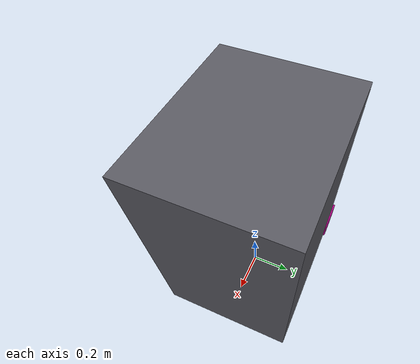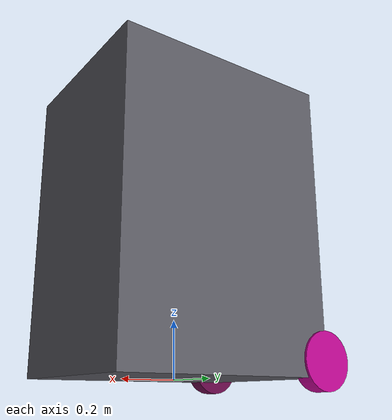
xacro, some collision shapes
<?xml version="1.0"?>

<robot
  xmlns:xacro="http://www.ros.org/wiki/xacro"
  name="iwalk">

  <!-- ΒΑΣΙΚΕΣ ΠΑΡΑΜΕΤΡΟΙ                                  -->

  <xacro:property name="PI" value="3.141592653589793"/>

  <!-- ros2_control configuration. These values become hardware_info parameters
       in the generated URDF; the plugin never parses this Xacro itself. -->
  <xacro:arg name="can_interface" default="vcan0"/>
  <xacro:arg name="single_motor" default="true"/>
  <xacro:arg name="monitor_only" default="false"/>
  <xacro:arg name="feedback_timeout" default="0.2"/>
  <xacro:arg name="motor_pole_pairs" default="15"/>
  <xacro:arg name="motor_gear_ratio" default="1.0"/>
  <xacro:arg name="motor_max_erpm" default="7500"/>
  <xacro:arg name="left_vesc_id" default="1"/>
  <xacro:arg name="right_vesc_id" default="2"/>
  <xacro:arg name="left_direction" default="1"/>
  <xacro:arg name="right_direction" default="1"/>
  <xacro:arg name="left_encoder_sensor" default="hall"/>
  <xacro:arg name="right_encoder_sensor" default="hall"/>
  <xacro:arg name="left_feedback_source" default="vesc_status"/>
  <xacro:arg name="right_feedback_source" default="vesc_status"/>

  <xacro:property name="motor_pole_pairs" value="$(arg motor_pole_pairs)"/>
  <xacro:property name="motor_gear_ratio" value="$(arg motor_gear_ratio)"/>
  <xacro:property name="motor_max_erpm" value="$(arg motor_max_erpm)"/>
  <!-- URDF wheel speed ceiling is derived from the sole hardware speed limit. -->
  <xacro:property name="motor_max_wheel_rad_s"
                  value="${motor_max_erpm * 2.0 * PI / (60.0 * motor_pole_pairs * motor_gear_ratio)}"/>

  <!-- Σταθερό ύψος του base_link από το έδαφος -->
  <xacro:property name="base_link_height" value="0.10"/>
  <!-- 0.001 αν το STL είναι σε mm, 1.0 αν είναι σε m -->

  <xacro:property name="mesh_scale" value="0.001"/>

  <!-- Μετατόπιση και περιστροφή του STL ως προς base_link -->
  <xacro:property name="mesh_x" value="0.682367371"/>
  <xacro:property name="mesh_y" value="-0.326500000"/>
  <xacro:property name="mesh_z" value="-0.095114396"/>

  <xacro:property name="mesh_roll"  value="0.0"/>
  <xacro:property name="mesh_pitch" value="0.0"/>
  <xacro:property name="mesh_yaw"   value="${PI/2.0}"/>

  <xacro:property name="body_length" value="0.784734741"/>
  <xacro:property name="body_width"  value="0.653000000"/>
  <xacro:property name="body_height" value="1.046494491"/>

  <xacro:property name="body_center_x" value="0.39"/>
  <xacro:property name="body_center_y" value="0.0"/>
  <xacro:property name="body_center_z" value="0.428247245"/>
    <!-- Προσωρινές δυναμικές παράμετροι -->
  <xacro:property name="body_mass" value="25.0"/>

  <!-- Πίσω κινητήριοι τροχοί -->
  <xacro:property name="rear_wheel_radius" value="0.10"/>
  <xacro:property name="rear_wheel_width"  value="0.059"/>
  <xacro:property name="rear_wheel_mass"   value="3.5"/>

  <xacro:property name="rear_wheel_separation" value="0.61"/>
  <xacro:property name="rear_wheel_x" value="0.0"/>
  <xacro:property name="rear_wheel_z" value="-0.040"/>

  <!-- Εμπρός caster τροχοί -->
  <xacro:property name="front_wheel_radius" value="0.060"/>
  <xacro:property name="front_wheel_width"  value="0.030"/>
  <xacro:property name="front_wheel_mass"   value="0.30"/>

  <xacro:property name="front_caster_x" value="0.63"/>
  <xacro:property name="front_caster_separation" value="0.38"/>
  <xacro:property name="front_wheel_z" value="-0.035"/>

  <xacro:property name="caster_trail" value="0.03"/>
  <!-- MATERIALS                                            -->

  <material name="iwalk_gray">
    <color rgba="0.35 0.35 0.38 0.95"/>
  </material>

  <!-- Ανοιχτό ροζ -->
  <material name="front_left_pink">
    <color rgba="1.00 0.55 0.72 1.0"/>
  </material>

  <!-- Έντονο hot pink -->
  <material name="front_right_pink">
    <color rgba="1.00 0.05 0.45 1.0"/>
  </material>

  <!-- Magenta -->
  <material name="rear_left_pink">
    <color rgba="0.72 0.02 0.55 1.0"/>
  </material>

  <!-- Σκούρο plum pink -->
  <material name="rear_right_pink">
    <color rgba="0.38 0.03 0.27 1.0"/>
  </material>
  <!-- INERTIAL MACROS                                      -->

  <!-- Inertia ορθογώνιου παραλληλεπιπέδου -->
  <xacro:macro
    name="box_inertial"
    params="mass x y z origin_x origin_y origin_z">

    <inertial>
      <origin
        xyz="${origin_x} ${origin_y} ${origin_z}"
        rpy="0 0 0"/>

      <mass value="${mass}"/>

      <inertia
        ixx="${mass * (y*y + z*z) / 12.0}"
        ixy="0.0"
        ixz="0.0"
        iyy="${mass * (x*x + z*z) / 12.0}"
        iyz="0.0"
        izz="${mass * (x*x + y*y) / 12.0}"/>
    </inertial>

  </xacro:macro>

  <!-- Inertia συμπαγούς κυλινδρικού τροχού με άξονα y -->
  <xacro:macro
    name="wheel_inertial"
    params="mass radius width">

    <inertial>
      <origin xyz="0 0 0" rpy="0 0 0"/>

      <mass value="${mass}"/>

      <inertia
        ixx="${mass * (3.0*radius*radius + width*width) / 12.0}"
        ixy="0.0"
        ixz="0.0"
        iyy="${mass * radius*radius / 2.0}"
        iyz="0.0"
        izz="${mass * (3.0*radius*radius + width*width) / 12.0}"/>
    </inertial>

  </xacro:macro>

  <!-- BASE FOOTPRINT                                       -->
  <!-- Σημείο στο έδαφος κάτω από τον πίσω άξονα            -->

  <link name="base_footprint"/>

  <!-- BASE LINK                                            -->
  <!-- Βρίσκεται στο μέσο του πίσω άξονα, στο ύψος          -->
  <!-- των κέντρων των τροχών                               -->

  <link name="base_link">

    <!-- Πραγματική οπτική γεωμετρία του i-Walk -->
    <visual name="iwalk_body_visual">

      <origin
        xyz="${mesh_x} ${mesh_y} ${mesh_z}"
        rpy="${mesh_roll} ${mesh_pitch} ${mesh_yaw}"/>

      <geometry>
        <mesh
          filename="package://iwalk_description/meshes/iwalk_body.STL"
          scale="${mesh_scale} ${mesh_scale} ${mesh_scale}"/>
      </geometry>

      <material name="iwalk_gray"/>

    </visual>

    <!--
      Για collision χρησιμοποιούμε απλή γεωμετρία.
      Αργότερα μπορεί να αντικατασταθεί από περισσότερα boxes
      ή από simplified collision mesh.
    -->
    <collision name="iwalk_body_collision">

      <origin
        xyz="${body_center_x}
             ${body_center_y}
             ${body_center_z}"
        rpy="0 0 0"/>

      <geometry>
        <box
          size="${body_length}
                ${body_width}
                ${body_height}"/>
      </geometry>

    </collision>

    <xacro:box_inertial
      mass="${body_mass}"
      x="${body_length}"
      y="${body_width}"
      z="${body_height}"
      origin_x="${body_center_x}"
      origin_y="${body_center_y}"
      origin_z="${body_center_z}"/>

  </link>

  <!-- base_footprint βρίσκεται στο έδαφος -->
  <joint name="base_footprint_joint" type="fixed">

    <parent link="base_footprint"/>
    <child link="base_link"/>

    <origin
      xyz="-0.39 0 ${base_link_height}"
      rpy="0 0 0"/>

  </joint>

  <!-- REAR DRIVEN WHEELS                                   -->
  <!-- Δομή αντίστοιχη με differential-drive robot          -->

  <xacro:macro
    name="rear_wheel"
    params="side y_position material_name">

    <link name="${side}_rear_wheel_link">

      <visual name="${side}_rear_wheel_visual">

        <!--
          Ο cylinder έχει αρχικά axis z.
          Rotation π/2 γύρω από x => wheel axis κατά y.
        -->
        <origin xyz="0 0 0" rpy="${PI/2.0} 0 0"/>

        <geometry>
          <cylinder
            radius="${rear_wheel_radius}"
            length="${rear_wheel_width}"/>
        </geometry>

        <material name="${material_name}"/>

      </visual>

      <collision name="${side}_rear_wheel_collision">

        <origin xyz="0 0 0" rpy="${PI/2.0} 0 0"/>

        <geometry>
          <cylinder
            radius="${rear_wheel_radius}"
            length="${rear_wheel_width}"/>
        </geometry>

      </collision>

      <xacro:wheel_inertial
        mass="${rear_wheel_mass}"
        radius="${rear_wheel_radius}"
        width="${rear_wheel_width}"/>

    </link>

    <joint
      name="${side}_rear_wheel_joint"
      type="continuous">

      <parent link="base_link"/>
      <child link="${side}_rear_wheel_link"/>

      <origin
        xyz="${rear_wheel_x} ${y_position} ${rear_wheel_z}"
        rpy="0 0 0"/>

      <axis xyz="0 1 0"/>

      <limit effort="50.0" velocity="${motor_max_wheel_rad_s}"/>

      <dynamics damping="0.01" friction="0.0"/>

    </joint>

  </xacro:macro>

  <xacro:rear_wheel
    side="left"
    y_position="${rear_wheel_separation / 2.0}"
    material_name="rear_left_pink"/>

  <xacro:rear_wheel
    side="right"
    y_position="${-rear_wheel_separation / 2.0}"
    material_name="rear_right_pink"/>

  <!-- FRONT PASSIVE CASTERS                                -->
  <!-- Κάθε caster έχει:                                    -->
  <!-- 1. swivel joint γύρω από z                           -->
  <!-- 2. wheel joint γύρω από y                            -->

  <xacro:macro
    name="front_caster"
    params="side y_position material_name">

    <!-- Περιστρεφόμενη βάση caster -->
    <link name="${side}_caster_swivel_link">

      <!-- Μικρή θετική μάζα για το μελλοντικό Gazebo -->
      <inertial>
        <origin xyz="0 0 0" rpy="0 0 0"/>
        <mass value="0.20"/>

        <inertia
          ixx="0.0002"
          ixy="0.0"
          ixz="0.0"
          iyy="0.0002"
          iyz="0.0"
          izz="0.0002"/>
      </inertial>

    </link>

    <joint
      name="${side}_caster_swivel_joint"
      type="continuous">

      <parent link="base_link"/>
      <child link="${side}_caster_swivel_link"/>

      <origin
        xyz="${front_caster_x}
            ${y_position}
            ${front_wheel_z}"
        rpy="0 0 0"/>

      <axis xyz="0 0 1"/>

      <limit effort="10.0" velocity="20.0"/>

      <dynamics damping="0.05" friction="0.01"/>

    </joint>

    <!-- Ο πραγματικός εμπρός τροχός -->
    <link name="${side}_front_wheel_link">

      <visual name="${side}_front_wheel_visual">

        <origin xyz="0 0 0" rpy="${PI/2.0} 0 0"/>

        <geometry>
          <cylinder
            radius="${front_wheel_radius}"
            length="${front_wheel_width}"/>
        </geometry>

        <material name="${material_name}"/>

      </visual>

      <collision name="${side}_front_wheel_collision">

        <origin xyz="0 0 0" rpy="${PI/2.0} 0 0"/>

        <geometry>
          <cylinder
            radius="${front_wheel_radius}"
            length="${front_wheel_width}"/>
        </geometry>

      </collision>

      <xacro:wheel_inertial
        mass="${front_wheel_mass}"
        radius="${front_wheel_radius}"
        width="${front_wheel_width}"/>

    </link>

    <joint
      name="${side}_front_wheel_joint"
      type="continuous">

      <parent link="${side}_caster_swivel_link"/>
      <child link="${side}_front_wheel_link"/>

      <!-- Wheel axle λίγο πίσω από το caster swivel axis -->
      <origin
        xyz="${-caster_trail} 0 0"
        rpy="0 0 0"/>

      <axis xyz="0 1 0"/>

      <limit effort="20.0" velocity="20.0"/>

      <dynamics damping="0.01" friction="0.0"/>

    </joint>

  </xacro:macro>

  <xacro:front_caster
    side="left"
    y_position="${front_caster_separation / 2.0}"
    material_name="front_left_pink"/>

  <xacro:front_caster
    side="right"
    y_position="${-front_caster_separation / 2.0}"
    material_name="front_right_pink"/>

<!-- Κοινή δήλωση ενός κινητήριου joint -->
<xacro:macro name="vesc_joint"
             params="joint_name vesc_id direction encoder_sensor feedback_source">
  <joint name="${joint_name}">
    <command_interface name="velocity"/>
    <state_interface name="position"/>
    <state_interface name="velocity"/>

    <param name="vesc_id">${vesc_id}</param>
    <param name="pole_pairs">${motor_pole_pairs}</param>
    <param name="gear_ratio">${motor_gear_ratio}</param>
    <param name="direction">${direction}</param>
    <param name="max_erpm">${motor_max_erpm}</param>

    <param name="encoder_sensor">${encoder_sensor}</param>
    <param name="feedback_source">${feedback_source}</param>
  </joint>
</xacro:macro>

<ros2_control name="IWalkVescSystem" type="system">
  <hardware>
    <plugin>iwalk_hardware/VescSystem</plugin>

    <param name="can_interface">$(arg can_interface)</param>
    <param name="feedback_timeout">$(arg feedback_timeout)</param>
    <param name="monitor_only">$(arg monitor_only)</param>
  </hardware>

  <xacro:vesc_joint
    joint_name="left_rear_wheel_joint"
    vesc_id="$(arg left_vesc_id)"
    direction="$(arg left_direction)"
    encoder_sensor="$(arg left_encoder_sensor)"
    feedback_source="$(arg left_feedback_source)"/>

  <!-- Στο τεστ ενός κινητήρα παραλείπεται ο δεξιός -->
  <xacro:unless value="$(arg single_motor)">
    <xacro:vesc_joint
      joint_name="right_rear_wheel_joint"
      vesc_id="$(arg right_vesc_id)"
      direction="$(arg right_direction)"
      encoder_sensor="$(arg right_encoder_sensor)"
      feedback_source="$(arg right_feedback_source)"/>
  </xacro:unless>
</ros2_control>
</robot>
